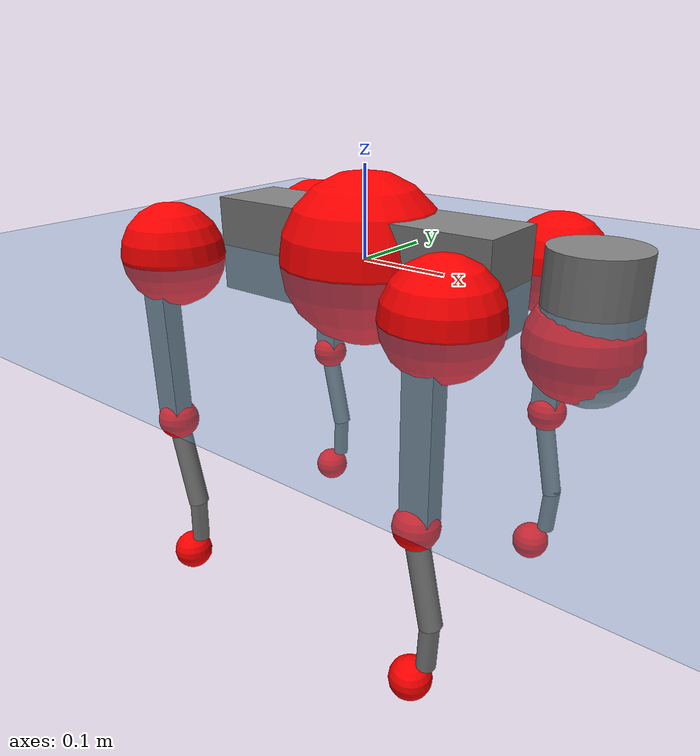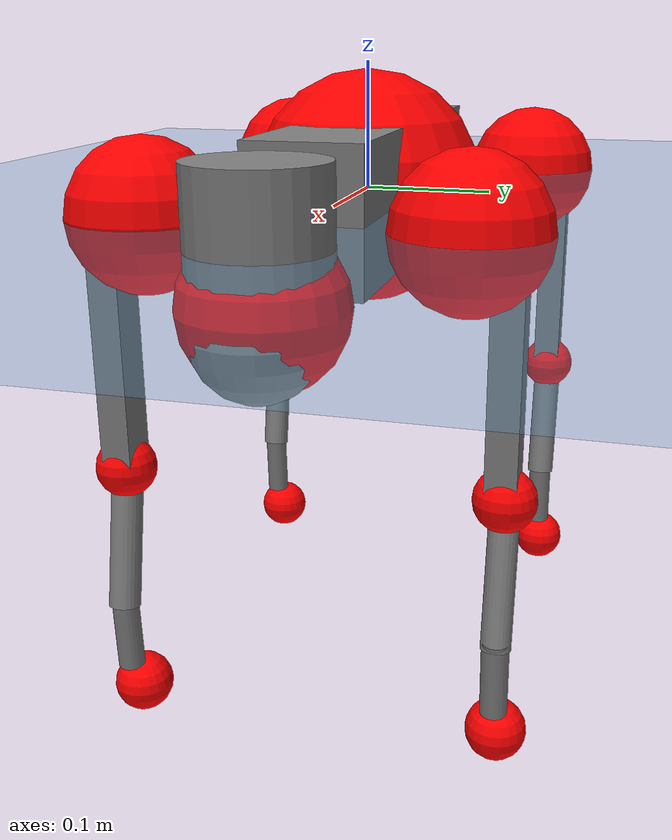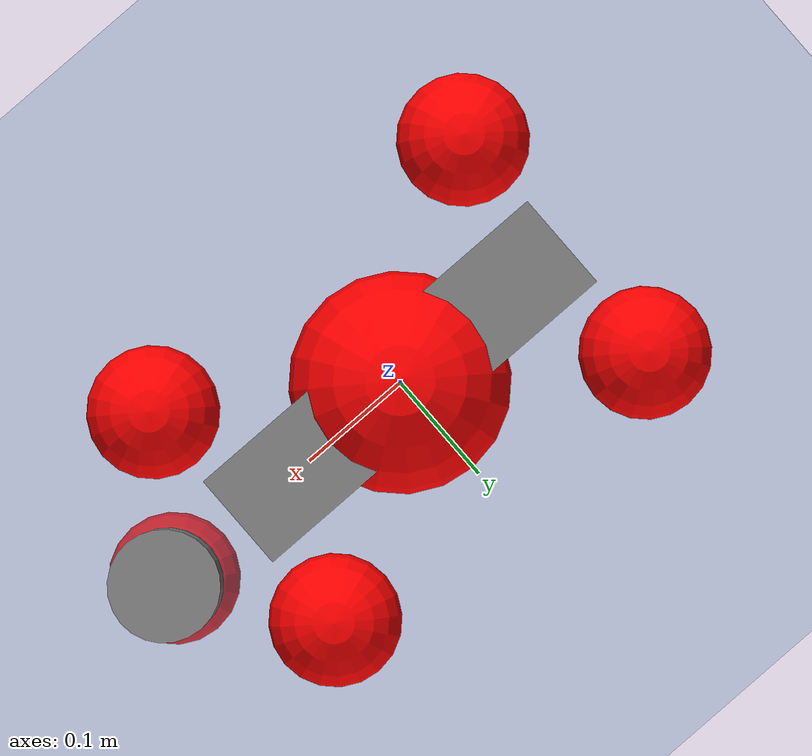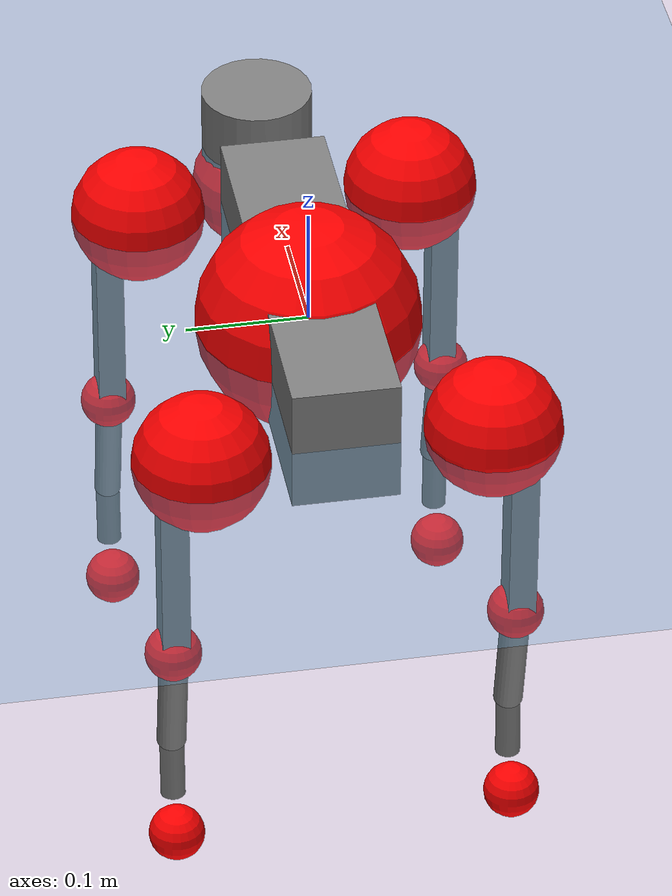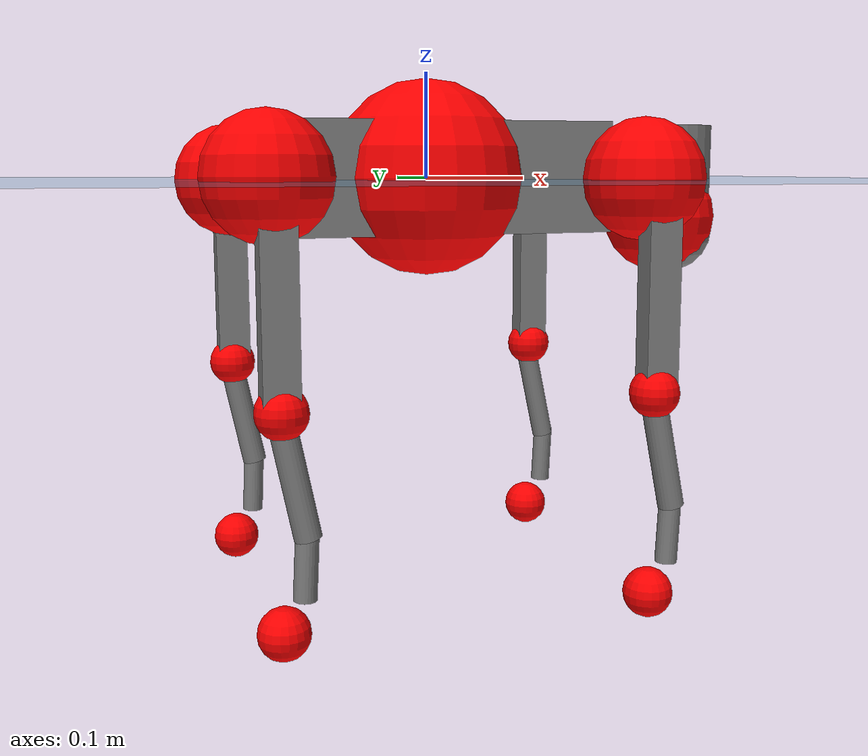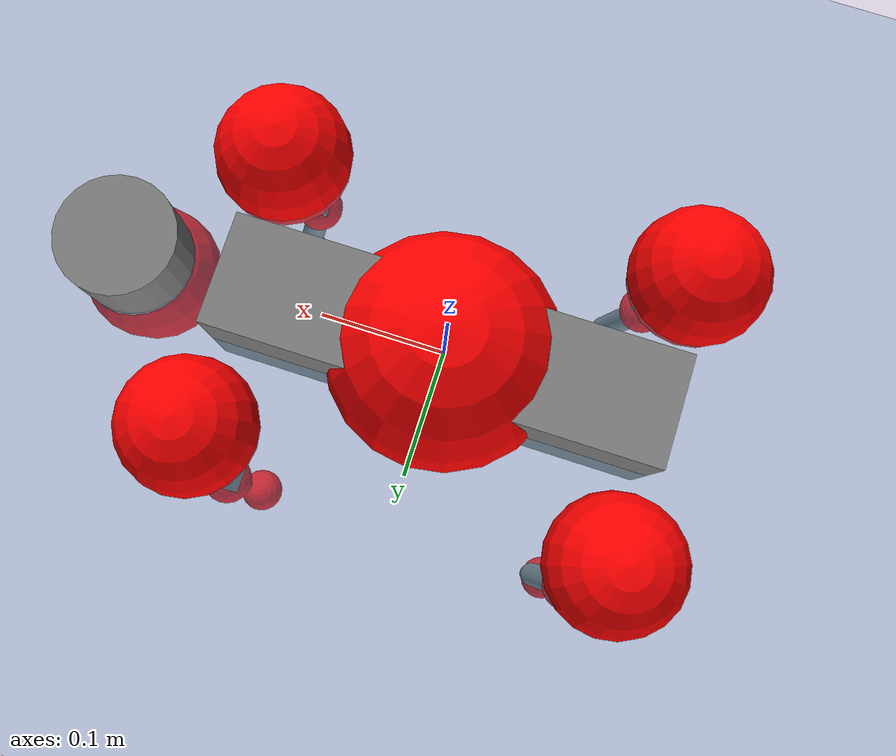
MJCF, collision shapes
<mujoco model="go2">
  <compiler angle="radian" assetdir="assets" balanceinertia="true" inertiafromgeom="false"/>

  <option timestep="0.005" density="1.2" viscosity="2e-05"/>

  <size nkey="1"/>

  <visual>
    <quality shadowsize="8192"/>
    <map shadowclip="0.5"/>
  </visual>

  <default>
    <default class="/">
      <geom contype="0" conaffinity="0" group="1" solref="-1000 -80"/>
      <site size="0.01 0.005 0.005" group="5"/>
      <general forcelimited="true" biastype="affine" gainprm="20" biasprm="0 -20 -0.5"/>
      <default class="go2">
        <joint armature="0.01" damping="0.01" frictionloss="0.2"/>
        <geom condim="1" margin="0.001"/>
        <default class="visual">
          <geom type="mesh" group="2"/>
        </default>
        <default class="collision">
          <geom group="3"/>
          <default class="foot">
            <geom size="0.022 0 0" condim="6" priority="1" friction="0.8 0.02 0.01" solimp="0.015 1 0.022"/>
          </default>
        </default>
        <default class="reward_collision_sphere">
          <geom group="5" rgba="1 0 0 1"/>
        </default>
      </default>
    </default>
  </default>

  <asset>
    <texture type="skybox" colorspace="auto" name="//unnamed_texture_0" builtin="gradient" rgb1="0.95 0.95 0.95" rgb2="0.95 0.95 0.95" width="100" height="600"/>
    <texture type="2d" colorspace="auto" name="texplane" builtin="checker" rgb1="0.345 0.575 0.748" rgb2="0.345 0.575 0.748" markrgb="1 1 1" width="512" height="512"/>
    <material name="MatPlane" class="/" texture="texplane" texuniform="true" texrepeat="2 2" specular="0.9"/>
    <material name="metal" class="/" rgba="0.9 0.95 0.95 1"/>
    <material name="black" class="/" rgba="0 0 0 1"/>
    <material name="white" class="/"/>
    <material name="gray" class="/" rgba="0.671705 0.692426 0.77427 1"/>
    <mesh name="base_0" class="/" file="base_0.obj"/>
    <mesh name="base_1" class="/" file="base_1.obj"/>
    <mesh name="base_2" class="/" file="base_2.obj"/>
    <mesh name="base_3" class="/" file="base_3.obj"/>
    <mesh name="base_4" class="/" file="base_4.obj"/>
    <mesh name="hip_0" class="/" file="hip_0.obj"/>
    <mesh name="hip_1" class="/" file="hip_1.obj"/>
    <mesh name="thigh_0" class="/" file="thigh_0.obj"/>
    <mesh name="thigh_1" class="/" file="thigh_1.obj"/>
    <mesh name="thigh_mirror_0" class="/" file="thigh_mirror_0.obj"/>
    <mesh name="thigh_mirror_1" class="/" file="thigh_mirror_1.obj"/>
    <mesh name="calf_0" class="/" file="calf_0.obj"/>
    <mesh name="calf_1" class="/" file="calf_1.obj"/>
    <mesh name="calf_mirror_0" class="/" file="calf_mirror_0.obj"/>
    <mesh name="calf_mirror_1" class="/" file="calf_mirror_1.obj"/>
    <mesh name="foot" class="/" file="foot.obj"/>
  </asset>

  <worldbody>
    <geom name="floor" class="/" size="100 100 0.125" type="plane" group="0" material="MatPlane"/>
    <light name="toplight_shadow" class="/" pos="0 0 5" dir="0.0990148 0.0990148 -0.990148" type="directional" ambient="0.04 0.04 0.04" diffuse="0.55 0.55 0.55" specular="0.12 0.12 0.12"/>
    <light name="toplight_fill" class="/" pos="0 0 5" dir="0.0990148 0.0990148 -0.990148" type="directional" castshadow="false" ambient="0.04 0.04 0.04" diffuse="0.3 0.3 0.3" specular="0.08 0.08 0.08"/>
    <body name="trunk" childclass="go2" pos="-3.85258e-06 -0.000228128 0.000962568" quat="1 0.000181125 -0.000870319 -3.98245e-05">
      <inertial pos="0.0172943 -0.00285073 -0.00639992" quat="-0.000614907 0.7144 -0.0030932 0.699731" mass="5.72866" diaginertia="0.0621431 0.100116 0.013808"/>
      <joint name="//unnamed_joint_0" type="free" armature="0" damping="0" frictionloss="0"/>
      <geom name="//unnamed_geom_1" class="visual" material="black" mesh="base_0"/>
      <geom name="//unnamed_geom_2" class="visual" material="black" mesh="base_1"/>
      <geom name="//unnamed_geom_3" class="visual" material="black" mesh="base_2"/>
      <geom name="//unnamed_geom_4" class="visual" material="white" mesh="base_3"/>
      <geom name="//unnamed_geom_5" class="visual" material="gray" mesh="base_4"/>
      <geom name="trunk_1" class="collision" size="0.175595 0.043642 0.0532105" type="box"/>
      <geom name="trunk_2" class="collision" size="0.0466759 0.0420083" pos="0.256056 0 0.0089511" type="cylinder"/>
      <geom name="trunk_3" class="collision" size="0.0438753" pos="0.263244 0 -0.0537066"/>
      <geom name="//unnamed_geom_9" class="reward_collision_sphere" size="0.0933518"/>
      <geom name="//unnamed_geom_10" class="reward_collision_sphere" size="0.0560111" pos="0.251564 0 -0.04028"/>
      <site name="imu" pos="-0.0114143 -0.000943347 0.0262285" size="0.00933518"/>
      <camera name="track" pos="0 -2.014 0" quat="0.707107 0.707107 0 0" mode="trackcom"/>
      <camera name="ego_camera" pos="0.280314 0 0.04028" quat="-0.5 -0.5 0.5 0.5"/>
      <body name="FL_hip" pos="0.170268 0.0439347 -0.0027279" quat="1 -0.000245366 0.000280229 -0.000277841">
        <inertial pos="-0.00475169 -0.000624608 0.000393785" quat="0.496841 0.499611 0.504805 0.498707" mass="0.556083" diaginertia="0.000511141 0.000584566 0.00026955"/>
        <joint name="FL_hip_joint" pos="0 0 0" axis="0.999911 -0.00716539 0.0112142" range="-1.04856 1.07891" armature="0.00928368" damping="0.0184466" frictionloss="0.161185"/>
        <geom name="//unnamed_geom_11" class="visual" material="metal" mesh="hip_0"/>
        <geom name="//unnamed_geom_12" class="visual" material="gray" mesh="hip_1"/>
        <geom name="//unnamed_geom_13" class="collision" size="0.0429418 0.0186704" pos="0 0.08056 0" quat="0.707107 0.707107 0 0" type="cylinder"/>
        <geom name="//unnamed_geom_14" class="reward_collision_sphere" size="0.0560111" pos="0 0.07049 0"/>
        <body name="FL_thigh" pos="-0.00320779 0.097674 0.00273049" quat="0.999999 0.000677244 2.97465e-05 0.000980899">
          <inertial pos="-0.00394569 -0.0225604 -0.0268775" quat="0.831993 0.0848219 -0.00659327 0.548225" mass="0.914938" diaginertia="0.00353201 0.005981 0.000513996"/>
          <joint name="FL_thigh_joint" pos="0 0 0" axis="-0.0043185 0.999991 -0.000175393" stiffness="0.00917162" range="-1.51726 3.54575" armature="0.00934059" damping="0.0178825" frictionloss="0.163901"/>
          <geom name="//unnamed_geom_15" class="visual" material="metal" mesh="thigh_0"/>
          <geom name="//unnamed_geom_16" class="visual" material="gray" mesh="thigh_1"/>
          <geom name="//unnamed_geom_17" class="collision" size="0.0994196 0.0114356 0.0158698" pos="0 0 -0.0953292" quat="0.707107 0 0.707107 0" type="box"/>
          <body name="FL_calf" pos="0.000302946 0.00185655 -0.19055" quat="1 0.000144818 0.000149775 0.000121926">
            <inertial pos="0.00520289 -0.000973734 -0.128337" quat="0.710645 0.000597865 -0.00641686 0.703522" mass="0.199323" diaginertia="0.000851013 0.00151183 3.06455e-05"/>
            <joint name="FL_calf_joint" pos="0 0 0" axis="0.00239395 0.999847 0.0173104" range="-2.66909 -0.827692" armature="0.00969286" damping="0.00175645" frictionloss="0.191701"/>
            <geom name="//unnamed_geom_18" class="visual" material="gray" mesh="calf_0"/>
            <geom name="//unnamed_geom_19" class="visual" material="black" mesh="calf_1"/>
            <geom name="FL_calf0" class="collision" size="0.0112022 0.0560111" pos="0.00718754 0 -0.0537066" quat="0.994493 0 -0.104807 0" type="cylinder"/>
            <geom name="//unnamed_geom_21" class="collision" size="0.0102687 0.0303393" pos="0.0179689 0 -0.132476" quat="0.999688 0 0.0249974 0" type="cylinder"/>
            <geom name="//unnamed_geom_22" class="visual" pos="0 0 -0.190658" quat="1 0 0 0" material="black" mesh="foot"/>
            <geom name="FL_foot" class="foot" size="0.0156981" pos="-0.00179689 0 -0.190658"/>
            <geom name="//unnamed_geom_24" class="reward_collision_sphere" size="0.0233379"/>
            <geom name="//unnamed_geom_25" class="reward_collision_sphere" size="0.0233379" pos="-0.00179689 0 -0.190658"/>
            <site name="FL_foot" class="foot" pos="-0.00179689 0 -0.190658" size="0.00933518"/>
          </body>
        </body>
      </body>
      <body name="FR_hip" pos="0.171801 -0.0454751 -0.000769922" quat="1 7.85233e-05 -0.000155347 -0.000142142">
        <inertial pos="-0.00727657 -0.00314512 -0.00316017" quat="0.498112 0.511339 0.492085 0.498266" mass="0.55106" diaginertia="0.000493785 0.000628307 0.00026307"/>
        <joint name="FR_hip_joint" pos="0 0 0" axis="0.999899 -0.00380719 0.0137141" stiffness="0.00386467" range="-1.06707 1.03806" armature="0.00962206" damping="0" frictionloss="0.197648"/>
        <geom name="//unnamed_geom_26" class="visual" pos="0 9.74734e-10 4.18083e-08" quat="4.63268e-05 1 0 0" material="metal" mesh="hip_0"/>
        <geom name="//unnamed_geom_27" class="visual" pos="0 1.58016e-09 -1.03408e-07" quat="4.63268e-05 1 0 0" material="gray" mesh="hip_1"/>
        <geom name="//unnamed_geom_28" class="collision" size="0.0429418 0.0186704" pos="0 -0.08056 0" quat="0.707107 0.707107 0 0" type="cylinder"/>
        <geom name="//unnamed_geom_29" class="reward_collision_sphere" size="0.0560111" pos="0 -0.07049 0"/>
        <body name="FR_thigh" pos="0.00262927 -0.0987414 -0.00198731" quat="0.999999 0.000869238 -0.000894844 -0.000150681">
          <inertial pos="-0.00126655 0.0219885 -0.0316779" quat="0.56044 -0.0133011 0.0824546 0.823973" mass="0.978779" diaginertia="0.00339698 0.00589319 0.00052403"/>
          <joint name="FR_thigh_joint" pos="0 0 0" axis="0.000805156 -0.999999 -0.000657056" range="-3.47294 1.58009" armature="0.00819122" damping="0.0174983" frictionloss="0.201704"/>
          <geom name="//unnamed_geom_30" class="visual" material="metal" mesh="thigh_mirror_0"/>
          <geom name="//unnamed_geom_31" class="visual" material="gray" mesh="thigh_mirror_1"/>
          <geom name="//unnamed_geom_32" class="collision" size="0.0994196 0.0114356 0.0158698" pos="0 0 -0.0953292" quat="0.707107 0 0.707107 0" type="box"/>
          <body name="FR_calf" pos="-0.00249651 -0.00119654 -0.191472" quat="0.999999 0.00098097 -0.000301977 0.00075317">
            <inertial pos="0.00276054 0.000809508 -0.127067" quat="0.704445 -0.00588985 -0.0080046 0.709689" mass="0.209636" diaginertia="0.000920152 0.00153272 3.17082e-05"/>
            <joint name="FR_calf_joint" pos="0 0 0" axis="-0.00954649 -0.999954 -0.000885051" range="0.793054 2.6701" armature="0.010783" damping="0.0185172" frictionloss="0.203633"/>
            <geom name="//unnamed_geom_33" class="visual" material="gray" mesh="calf_mirror_0"/>
            <geom name="//unnamed_geom_34" class="visual" material="black" mesh="calf_mirror_1"/>
            <geom name="FR_calf0" class="collision" size="0.0121357 0.0560111" pos="0.00898443 0 -0.0537066" quat="0.995004 0 -0.0998334 0" type="cylinder"/>
            <geom name="//unnamed_geom_36" class="collision" size="0.0102687 0.0303393" pos="0.0179689 0 -0.132476" quat="0.999688 0 0.0249974 0" type="cylinder"/>
            <geom name="//unnamed_geom_37" class="visual" pos="0 0 -0.190658" quat="1 0 0 0" material="black" mesh="foot"/>
            <geom name="FR_foot" class="foot" size="0.0200437" pos="-0.00179689 0 -0.190658"/>
            <geom name="//unnamed_geom_39" class="reward_collision_sphere" size="0.0233379"/>
            <geom name="//unnamed_geom_40" class="reward_collision_sphere" size="0.0233379" pos="-0.00179689 0 -0.190658"/>
            <site name="FR_foot" class="foot" pos="-0.00179689 0 -0.190658" size="0.00933518"/>
          </body>
        </body>
      </body>
      <body name="RL_hip" pos="-0.171081 0.0445778 -0.00260581" quat="1 5.92757e-05 1.732e-05 -0.000135578">
        <inertial pos="0.00498234 0.00508379 -0.000764427" quat="0.502716 0.497984 0.508067 0.491078" mass="0.565597" diaginertia="0.00054053 0.000637162 0.000275115"/>
        <joint name="RL_hip_joint" pos="0 0 0" axis="-0.999993 0.000802419 0.00353545" range="-1.05977 1.06076" armature="0.00995126" damping="0" frictionloss="0.184943"/>
        <geom name="//unnamed_geom_41" class="visual" pos="-2.9033e-11 0 -5.69111e-09" quat="4.63268e-05 0 1 0" material="metal" mesh="hip_0"/>
        <geom name="//unnamed_geom_42" class="visual" pos="-4.70659e-11 0 -5.04721e-09" quat="4.63268e-05 0 1 0" material="gray" mesh="hip_1"/>
        <geom name="//unnamed_geom_43" class="collision" size="0.0429418 0.0186704" pos="0 0.08056 0" quat="0.707107 0.707107 0 0" type="cylinder"/>
        <geom name="//unnamed_geom_44" class="reward_collision_sphere" size="0.0560111" pos="0 0.07049 0"/>
        <body name="RL_thigh" pos="0.000435764 0.0947222 0.00148774" quat="1 -0.000386005 -0.000380903 0.000321832">
          <inertial pos="-0.00478773 -0.0211688 -0.0313962" quat="0.828375 0.0833074 -0.0200388 0.553582" mass="0.887603" diaginertia="0.00328717 0.006041 0.000494426"/>
          <joint name="RL_thigh_joint" pos="0 0 0" axis="-0.000181981 0.999988 0.00489144" stiffness="0.0112263" range="-0.564249 4.48328" armature="0.00905934" damping="0" frictionloss="0.189473"/>
          <geom name="//unnamed_geom_45" class="visual" material="metal" mesh="thigh_0"/>
          <geom name="//unnamed_geom_46" class="visual" material="gray" mesh="thigh_1"/>
          <geom name="//unnamed_geom_47" class="collision" size="0.0994196 0.0114356 0.0158698" pos="0 0 -0.0953292" quat="0.707107 0 0.707107 0" type="box"/>
          <body name="RL_calf" pos="-0.00152567 0.000974125 -0.19187" quat="1 2.24658e-05 -0.000203041 7.77207e-06">
            <inertial pos="0.00770627 0.00198907 -0.127391" quat="0.70419 -0.0030296 0.00389152 0.709994" mass="0.200368" diaginertia="0.000857148 0.00159343 3.12866e-05"/>
            <joint name="RL_calf_joint" pos="0 0 0" axis="0.00343823 0.999994 0.00030716" stiffness="0.00897888" range="-2.66934 -0.891871" armature="0.0104428" damping="0.0174592" frictionloss="0.161121"/>
            <geom name="//unnamed_geom_48" class="visual" material="gray" mesh="calf_0"/>
            <geom name="//unnamed_geom_49" class="visual" material="black" mesh="calf_1"/>
            <geom name="RL_calf0" class="collision" size="0.0121357 0.0560111" pos="0.00898443 0 -0.0537066" quat="0.995004 0 -0.0998334 0" type="cylinder"/>
            <geom name="//unnamed_geom_51" class="collision" size="0.0102687 0.0303393" pos="0.0179689 0 -0.132476" quat="0.999688 0 0.0249974 0" type="cylinder"/>
            <geom name="//unnamed_geom_52" class="visual" pos="0 0 -0.190658" quat="1 0 0 0" material="black" mesh="foot"/>
            <geom name="RL_foot" class="foot" size="0.0187321" pos="-0.00179689 0 -0.190658"/>
            <geom name="//unnamed_geom_54" class="reward_collision_sphere" size="0.0233379"/>
            <geom name="//unnamed_geom_55" class="reward_collision_sphere" size="0.0233379" pos="-0.00179689 0 -0.190658"/>
            <site name="RL_foot" class="foot" pos="-0.00179689 0 -0.190658" size="0.00933518"/>
          </body>
        </body>
      </body>
      <body name="RR_hip" pos="-0.172255 -0.0482471 0.00226809" quat="1 -0.000408839 -0.000114773 0.000147354">
        <inertial pos="0.00229138 0.000466285 -0.00232763" quat="0.497603 0.502536 0.497514 0.502323" mass="0.558704" diaginertia="0.000504839 0.000608283 0.000271079"/>
        <joint name="RR_hip_joint" pos="0 0 0" axis="-0.999927 -0.00768109 0.00929845" range="-1.09752 1.09067" armature="0.0086474" damping="0" frictionloss="0.188563"/>
        <geom name="//unnamed_geom_56" class="visual" pos="3.27911e-11 9.74734e-10 -4.74995e-08" quat="2.14617e-09 4.63268e-05 4.63268e-05 -1" material="metal" mesh="hip_0"/>
        <geom name="//unnamed_geom_57" class="visual" pos="3.777e-11 1.58016e-09 9.83608e-08" quat="2.14617e-09 4.63268e-05 4.63268e-05 -1" material="gray" mesh="hip_1"/>
        <geom name="//unnamed_geom_58" class="collision" size="0.0429418 0.0186704" pos="0 -0.08056 0" quat="0.707107 0.707107 0 0" type="cylinder"/>
        <geom name="//unnamed_geom_59" class="reward_collision_sphere" size="0.0560111" pos="0 -0.07049 0"/>
        <body name="RR_thigh" pos="0.00200662 -0.0948878 -0.00131404" quat="0.999999 0.000370271 0.000996395 0.000541573">
          <inertial pos="-0.00281056 0.0250165 -0.0294613" quat="0.551342 -0.0212291 0.0854197 0.829623" mass="0.874022" diaginertia="0.0032483 0.00591405 0.000494667"/>
          <joint name="RR_thigh_joint" pos="0 0 0" axis="0.00217856 -0.999994 0.00253533" stiffness="0.001211" range="-4.48701 0.514717" armature="0.00971626" damping="0.0215496" frictionloss="0.184226"/>
          <geom name="//unnamed_geom_60" class="visual" material="metal" mesh="thigh_mirror_0"/>
          <geom name="//unnamed_geom_61" class="visual" material="gray" mesh="thigh_mirror_1"/>
          <geom name="//unnamed_geom_62" class="collision" size="0.0994196 0.0114356 0.0158698" pos="0 0 -0.0953292" quat="0.707107 0 0.707107 0" type="box"/>
          <body name="RR_calf" pos="0.00128929 0.00197101 -0.190914" quat="0.999999 -0.000362555 0.000520856 0.00088685">
            <inertial pos="0.00825475 -0.00110314 -0.126668" quat="0.711786 -0.00822481 -0.00536998 0.702327" mass="0.198068" diaginertia="0.000846778 0.0015159 2.96553e-05"/>
            <joint name="RR_calf_joint" pos="0 0 0" axis="-0.00822979 -0.99995 0.00573821" range="0.83361 2.77401" armature="0.00916947" damping="0.018638" frictionloss="0.202852"/>
            <geom name="//unnamed_geom_63" class="visual" material="gray" mesh="calf_mirror_0"/>
            <geom name="//unnamed_geom_64" class="visual" material="black" mesh="calf_mirror_1"/>
            <geom name="RR_calf0" class="collision" size="0.0121357 0.0560111" pos="0.00898443 0 -0.0537066" quat="0.995004 0 -0.0998334 0" type="cylinder"/>
            <geom name="//unnamed_geom_66" class="collision" size="0.0102687 0.0303393" pos="0.0179689 0 -0.132476" quat="0.999688 0 0.0249974 0" type="cylinder"/>
            <geom name="//unnamed_geom_67" class="visual" pos="0 0 -0.190658" quat="1 0 0 0" material="black" mesh="foot"/>
            <geom name="RR_foot" class="foot" size="0.0189046" pos="-0.00179689 0 -0.190658"/>
            <geom name="//unnamed_geom_69" class="reward_collision_sphere" size="0.0233379"/>
            <geom name="//unnamed_geom_70" class="reward_collision_sphere" size="0.0233379" pos="-0.00179689 0 -0.190658"/>
            <site name="RR_foot" class="foot" pos="-0.00179689 0 -0.190658" size="0.00933518"/>
          </body>
        </body>
      </body>
    </body>
  </worldbody>

  <contact>
    <pair class="/" geom1="floor" geom2="FL_foot" name="//unnamed_contact_0"/>
    <pair class="/" geom1="floor" geom2="FR_foot" name="//unnamed_contact_1"/>
    <pair class="/" geom1="floor" geom2="RL_foot" name="//unnamed_contact_2"/>
    <pair class="/" geom1="floor" geom2="RR_foot" name="//unnamed_contact_3"/>
  </contact>

  <actuator>
    <general name="FL_hip" class="/" joint="FL_hip_joint" forcerange="-19.7302 19.7302" gainprm="17.6474" biasprm="0 -17.6474 -0.438954"/>
    <general name="FL_thigh" class="/" joint="FL_thigh_joint" forcerange="-20.3755 20.3755" gainprm="17.6474" biasprm="0 -17.6474 -0.438954"/>
    <general name="FL_calf" class="/" joint="FL_calf_joint" forcerange="-40.6929 40.6929" gainprm="17.6474" biasprm="0 -17.6474 -0.438954"/>
    <general name="FR_hip" class="/" joint="FR_hip_joint" forcerange="-22.2647 22.2647" gainprm="17.6474" biasprm="0 -17.6474 -0.438954"/>
    <general name="FR_thigh" class="/" joint="FR_thigh_joint" forcerange="-24.4184 24.4184" gainprm="17.6474" biasprm="0 -17.6474 -0.438954"/>
    <general name="FR_calf" class="/" joint="FR_calf_joint" forcerange="-43.2493 43.2493" gainprm="17.6474" biasprm="0 -17.6474 -0.438954"/>
    <general name="RL_hip" class="/" joint="RL_hip_joint" forcerange="-21.8445 21.8445" gainprm="17.6474" biasprm="0 -17.6474 -0.438954"/>
    <general name="RL_thigh" class="/" joint="RL_thigh_joint" forcerange="-19.8251 19.8251" gainprm="17.6474" biasprm="0 -17.6474 -0.438954"/>
    <general name="RL_calf" class="/" joint="RL_calf_joint" forcerange="-44.2726 44.2726" gainprm="17.6474" biasprm="0 -17.6474 -0.438954"/>
    <general name="RR_hip" class="/" joint="RR_hip_joint" forcerange="-22.9812 22.9812" gainprm="17.6474" biasprm="0 -17.6474 -0.438954"/>
    <general name="RR_thigh" class="/" joint="RR_thigh_joint" forcerange="-24.3274 24.3274" gainprm="17.6474" biasprm="0 -17.6474 -0.438954"/>
    <general name="RR_calf" class="/" joint="RR_calf_joint" forcerange="-42.4248 42.4248" gainprm="17.6474" biasprm="0 -17.6474 -0.438954"/>
  </actuator>

  <sensor>
    <gyro site="imu" name="imu_angular_velocity"/>
    <velocimeter site="imu" name="imu_linear_velocity"/>
    <framelinvel objtype="site" objname="FL_foot" name="FL_foot_global_linear_velocity"/>
    <framelinvel objtype="site" objname="FR_foot" name="FR_foot_global_linear_velocity"/>
    <framelinvel objtype="site" objname="RL_foot" name="RL_foot_global_linear_velocity"/>
    <framelinvel objtype="site" objname="RR_foot" name="RR_foot_global_linear_velocity"/>
  </sensor>

  <keyframe>
    <key name="home" qpos="0 0 0.325 1 0 0 0 0.1 0.8 -1.5 -0.1 -0.8 1.5 -0.1 0.8 -1.5 0.1 -0.8 1.5"/>
  </keyframe>
</mujoco>
